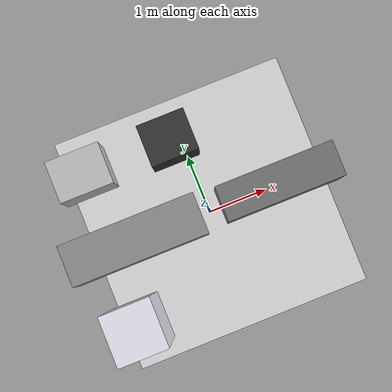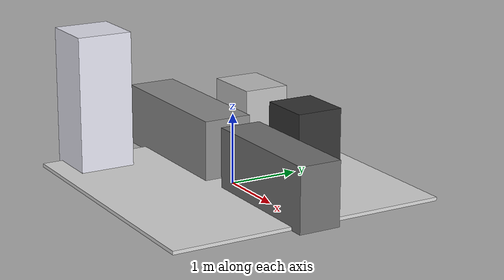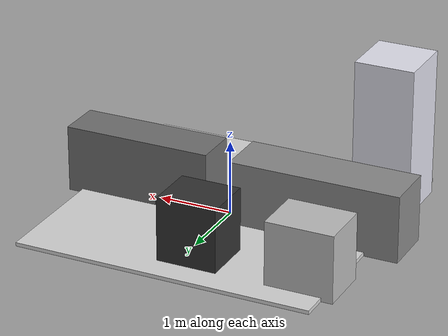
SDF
<?xml version="1.0"?>

<sdf version="1.7">

<model name="kitchen">

<static>true</static>

<link name="kitchen_link">

  <!-- ================= FLOOR ================= -->

  <visual name="floor">

    <pose>0 0 0.025 0 0 0</pose>

    <geometry>

      <box>

        <size>4 4 0.05</size>

      </box>

    </geometry>

    <material>

      <ambient>0.85 0.85 0.85 1</ambient>

      <diffuse>0.85 0.85 0.85 1</diffuse>

    </material>

  </visual>

  <collision name="floor_collision">

    <pose>0 0 0.025 0 0 0</pose>

    <geometry>

      <box>

        <size>4 4 0.05</size>

      </box>

    </geometry>

  </collision>

  <!-- ================= SERVING COUNTER ================= -->

  <visual name="counter">

    <pose>1.2 0 0.45 0 0 0</pose>

    <geometry>

      <box>

        <size>2.0 0.6 0.9</size>

      </box>

    </geometry>

    <material>

      <ambient>0.45 0.45 0.45 1</ambient>

      <diffuse>0.45 0.45 0.45 1</diffuse>

    </material>

  </visual>

  <collision name="counter_collision">

    <pose>1.2 0 0.45 0 0 0</pose>

    <geometry>

      <box>

        <size>2.0 0.6 0.9</size>

      </box>

    </geometry>

  </collision>

  <!-- ================= BACK COUNTER ================= -->

  <visual name="back_counter">

    <pose>-1.3 0 0.45 0 0 0</pose>

    <geometry>

      <box>

        <size>2.3 0.7 0.9</size>

      </box>

    </geometry>

    <material>

      <ambient>0.55 0.55 0.55 1</ambient>

      <diffuse>0.55 0.55 0.55 1</diffuse>

    </material>

  </visual>

  <collision name="back_counter_collision">

    <pose>-1.3 0 0.45 0 0 0</pose>

    <geometry>

      <box>

        <size>2.3 0.7 0.9</size>

      </box>

    </geometry>

  </collision>

  <!-- ================= REFRIGERATOR ================= -->

  <visual name="fridge">

    <pose>-1.7 -1.3 1.0 0 0 0</pose>

    <geometry>

      <box>

        <size>0.8 0.8 2.0</size>

      </box>

    </geometry>

    <material>

      <ambient>0.9 0.9 0.95 1</ambient>

      <diffuse>0.9 0.9 0.95 1</diffuse>

    </material>

  </visual>

  <collision name="fridge_collision">

    <pose>-1.7 -1.3 1.0 0 0 0</pose>

    <geometry>

      <box>

        <size>0.8 0.8 2.0</size>

      </box>

    </geometry>

  </collision>

  <!-- ================= STOVE ================= -->

  <visual name="stove">

    <pose>-0.2 1.3 0.45 0 0 0</pose>

    <geometry>

      <box>

        <size>0.8 0.7 0.9</size>

      </box>

    </geometry>

    <material>

      <ambient>0.2 0.2 0.2 1</ambient>

      <diffuse>0.2 0.2 0.2 1</diffuse>

    </material>

  </visual>

  <collision name="stove_collision">

    <pose>-0.2 1.3 0.45 0 0 0</pose>

    <geometry>

      <box>

        <size>0.8 0.7 0.9</size>

      </box>

    </geometry>

  </collision>

  <!-- ================= SINK ================= -->

  <visual name="sink">

    <pose>-1.7 1.3 0.45 0 0 0</pose>

    <geometry>

      <box>

        <size>0.9 0.7 0.9</size>

      </box>

    </geometry>

    <material>

      <ambient>0.75 0.75 0.75 1</ambient>

      <diffuse>0.75 0.75 0.75 1</diffuse>

    </material>

  </visual>

  <collision name="sink_collision">

    <pose>-1.7 1.3 0.45 0 0 0</pose>

    <geometry>

      <box>

        <size>0.9 0.7 0.9</size>

      </box>

    </geometry>

  </collision>

</link>

</model>

</sdf>
